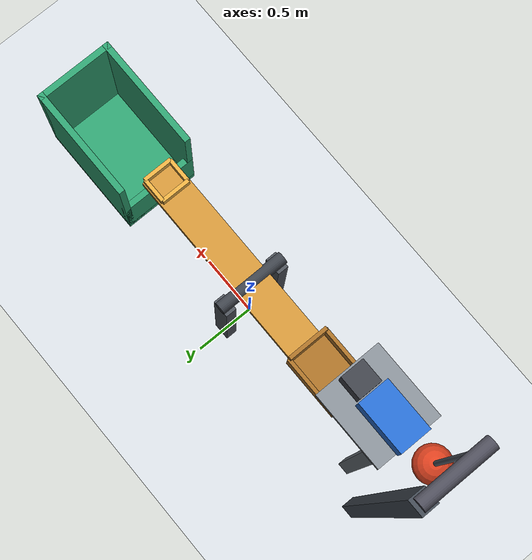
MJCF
<mujoco model="pendulum_cart_seesaw_catch">
  <compiler angle="radian" inertiafromgeom="auto"/>
  <option timestep="0.002" gravity="0 0 -9.81" integrator="implicitfast" cone="elliptic" iterations="100"/>
  <size njmax="2000" nconmax="400"/>
  <visual>
    <headlight ambient="0.4 0.4 0.4" diffuse="0.7 0.7 0.7" specular="0.2 0.2 0.2"/>
    <global azimuth="110" elevation="-18"/>
  </visual>

  <worldbody>
    <light name="main_light" pos="-1 -3 6" dir="0.2 0.3 -1" directional="true"/>
    <camera name="overview" pos="3.8 -8 4.4" xyaxes="0.88 0.47 0 -0.17 0.32 0.93"/>

    <geom name="floor" type="plane" size="8 5 0.1" rgba="0.82 0.84 0.86 1" friction="0.8 0.02 0.01" condim="6"/>

    <!-- The pendulum bob starts exactly 0.6 m above its bottommost position:
         length 1.5 m, release angle acos(0.6), zero initial velocity. -->
    <body name="pendulum_support" pos="-1.7 0 0">
      <geom name="pendulum_support_post" type="box" pos="0 0.38 1.795" size="0.055 0.055 1.795" rgba="0.25 0.28 0.32 1" contype="0" conaffinity="0"/>
      <geom name="pendulum_support_axle" type="cylinder" pos="0 0.17 3.59" quat="0.7071067812 0.7071067812 0 0" size="0.045 0.24" rgba="0.3 0.3 0.35 1" contype="0" conaffinity="0"/>
    </body>

    <body name="pendulum" pos="-1.7 0 3.59">
      <joint name="pendulum_hinge" type="hinge" axis="0 1 0" limited="true" range="-0.3 1.05" damping="0.025" frictionloss="0.002" solreflimit="0.006 1"/>
      <geom name="pendulum_rod" type="capsule" fromto="0 0 0 0 0 -1.5" size="0.018" mass="0.07" rgba="0.35 0.38 0.42 1"/>
      <geom name="pendulum_striker" type="sphere" pos="0 0 -1.5" size="0.13" mass="2.4" rgba="0.85 0.25 0.12 1" friction="0.4 0.01 0.002" solref="0.006 1" solimp="0.95 0.99 0.001"/>
    </body>

    <!-- A thin shelf lets the left end of the seesaw swing underneath it. -->
    <body name="weight_shelf" pos="0 0 0">
      <geom name="weight_shelf_top" type="box" pos="-1.22 0 1.925" size="0.30 0.26 0.025" rgba="0.52 0.55 0.58 1" friction="0.25 0.005 0.001" solref="0.006 1"/>
      <geom name="weight_shelf_leg_front" type="box" pos="-1.43 -0.21 0.95" size="0.05 0.035 0.95" rgba="0.4 0.43 0.46 1"/>
      <geom name="weight_shelf_leg_back" type="box" pos="-1.43 0.21 0.95" size="0.05 0.035 0.95" rgba="0.4 0.43 0.46 1"/>
    </body>

    <body name="cart" pos="-1.33 0 2.09">
      <joint name="cart_slide" type="slide" axis="1 0 0" limited="true" range="0 0.24" damping="0.08" frictionloss="0.02" solreflimit="0.004 1" solimplimit="0.98 0.995 0.001"/>
      <geom name="cart_block" type="box" size="0.20 0.12 0.09" mass="0.8" rgba="0.15 0.42 0.8 1" friction="0.3 0.005 0.001" solref="0.006 1" solimp="0.95 0.99 0.001"/>
    </body>

    <body name="weight" pos="-1.03 0 2.04">
      <freejoint name="weight_free"/>
      <geom name="weight_block" type="box" size="0.09 0.09 0.09" mass="3" rgba="0.24 0.25 0.28 1" friction="0.9 0.02 0.005" condim="6" solref="0.008 1" solimp="0.95 0.99 0.001"/>
    </body>

    <body name="seesaw_support" pos="0 0 0">
      <geom name="seesaw_support_front" type="box" pos="0 -0.24 0.53" size="0.07 0.045 0.53" rgba="0.3 0.32 0.35 1"/>
      <geom name="seesaw_support_back" type="box" pos="0 0.24 0.53" size="0.07 0.045 0.53" rgba="0.3 0.32 0.35 1"/>
      <geom name="seesaw_support_axle" type="cylinder" pos="0 0 1.1" quat="0.7071067812 0.7071067812 0 0" size="0.05 0.29" rgba="0.24 0.26 0.29 1" contype="0" conaffinity="0"/>
    </body>

    <!-- The 0.35-radian joint limit is the left end's lower stop.
         The ball's side begins low and rises when the weight lands. -->
    <body name="seesaw" pos="0 0 1.1">
      <inertial pos="0 0 0" mass="0.45" diaginertia="0.01 0.17 0.17"/>
      <joint name="seesaw_hinge" type="hinge" axis="0 1 0" limited="true" range="0.35 0.75" damping="0.06" frictionloss="0.005" solreflimit="0.004 1" solimplimit="0.99 0.999 0.0005"/>
      <geom name="seesaw_beam" type="box" size="1.05 0.14 0.03" rgba="0.8 0.57 0.22 1" friction="0.8 0.015 0.003" solref="0.006 1"/>
      <geom name="seesaw_weight_pad" type="box" pos="-0.84 0 0.045" size="0.23 0.15 0.015" rgba="0.65 0.43 0.15 1" friction="1 0.025 0.005" condim="6" solref="0.008 1"/>
      <geom name="seesaw_weight_inner_wall" type="box" pos="-0.60 0 0.145" size="0.015 0.165 0.115" rgba="0.65 0.43 0.15 1" friction="0.8 0.02 0.005" solref="0.008 1"/>
      <geom name="seesaw_weight_front_wall" type="box" pos="-0.84 -0.165 0.11" size="0.245 0.015 0.08" rgba="0.65 0.43 0.15 1" friction="0.8 0.02 0.005" solref="0.008 1"/>
      <geom name="seesaw_weight_back_wall" type="box" pos="-0.84 0.165 0.11" size="0.245 0.015 0.08" rgba="0.65 0.43 0.15 1" friction="0.8 0.02 0.005" solref="0.008 1"/>
      <geom name="seesaw_ball_outer_lip" type="box" pos="1.045 0 0.0625" size="0.015 0.12 0.0325" rgba="0.9 0.67 0.25 1" friction="0.25 0.005 0.001" solref="0.006 1"/>
      <geom name="seesaw_ball_inner_lip" type="box" pos="0.845 0 0.0625" size="0.015 0.12 0.0325" rgba="0.9 0.67 0.25 1" friction="0.25 0.005 0.001" solref="0.006 1"/>
      <geom name="seesaw_ball_front_lip" type="box" pos="0.945 -0.115 0.0625" size="0.10 0.015 0.0325" rgba="0.9 0.67 0.25 1" friction="0.25 0.005 0.001" solref="0.006 1"/>
      <geom name="seesaw_ball_back_lip" type="box" pos="0.945 0.115 0.0625" size="0.10 0.015 0.0325" rgba="0.9 0.67 0.25 1" friction="0.25 0.005 0.001" solref="0.006 1"/>
    </body>

    <body name="ball" pos="0.772768328 0 0.477127537">
      <freejoint name="ball_free"/>
      <geom name="ball_sphere" type="sphere" size="0.04" mass="0.045" rgba="0.95 0.16 0.18 1" friction="0.7 0.015 0.008" condim="6" solref="0.006 1" solimp="0.95 0.995 0.001"/>
    </body>

    <!-- A low entry rim clears the rising ball; higher outer walls contain it.
         Rolling friction dissipates the ball's remaining motion. -->
    <body name="cup" pos="0 0 0">
      <geom name="cup_bottom" type="box" pos="1.55 0 0.25" size="0.475 0.325 0.03" rgba="0.18 0.62 0.43 1" friction="1 0.05 0.03" condim="6" solref="0.008 1" solimp="0.95 0.995 0.001"/>
      <geom name="cup_entry_wall" type="box" pos="1.10 0 0.47" size="0.025 0.325 0.21" rgba="0.18 0.62 0.43 1" friction="1 0.05 0.03" condim="6" solref="0.008 1"/>
      <geom name="cup_far_wall" type="box" pos="2.00 0 0.73" size="0.025 0.325 0.47" rgba="0.18 0.62 0.43 1" friction="1 0.05 0.03" condim="6" solref="0.008 1"/>
      <geom name="cup_front_wall" type="box" pos="1.55 -0.30 0.73" size="0.475 0.025 0.47" rgba="0.18 0.62 0.43 1" friction="1 0.05 0.03" condim="6" solref="0.008 1"/>
      <geom name="cup_back_wall" type="box" pos="1.55 0.30 0.73" size="0.475 0.025 0.47" rgba="0.18 0.62 0.43 1" friction="1 0.05 0.03" condim="6" solref="0.008 1"/>
    </body>
  </worldbody>

  <keyframe>
    <key name="start" time="0" qpos="0.927295218 0 -1.03 0 2.04 1 0 0 0 0.75 0.772768328 0 0.477127537 1 0 0 0" qvel="0 0 0 0 0 0 0 0 0 0 0 0 0 0 0"/>
  </keyframe>
</mujoco>
